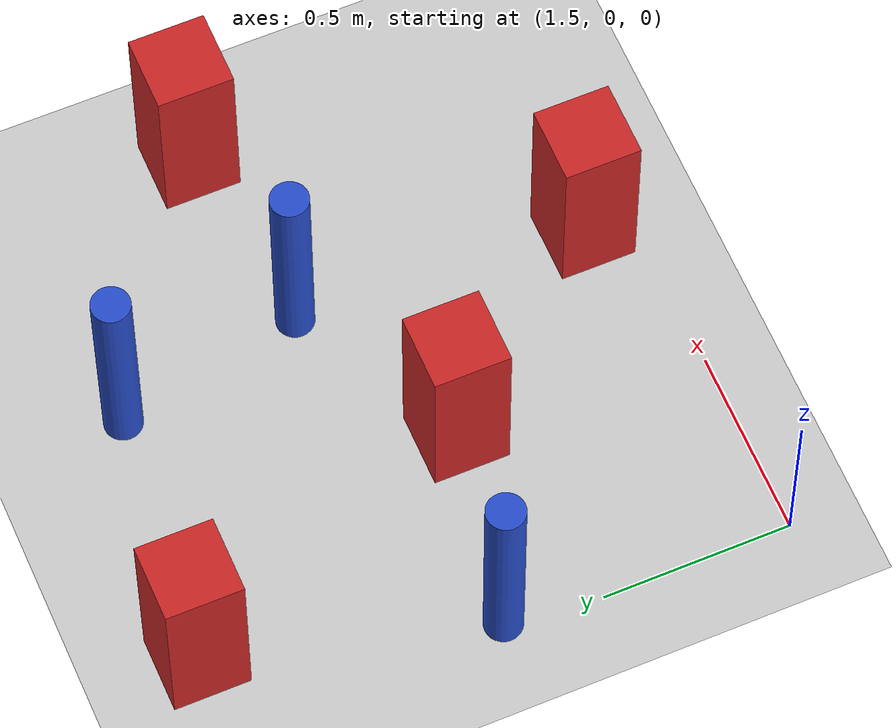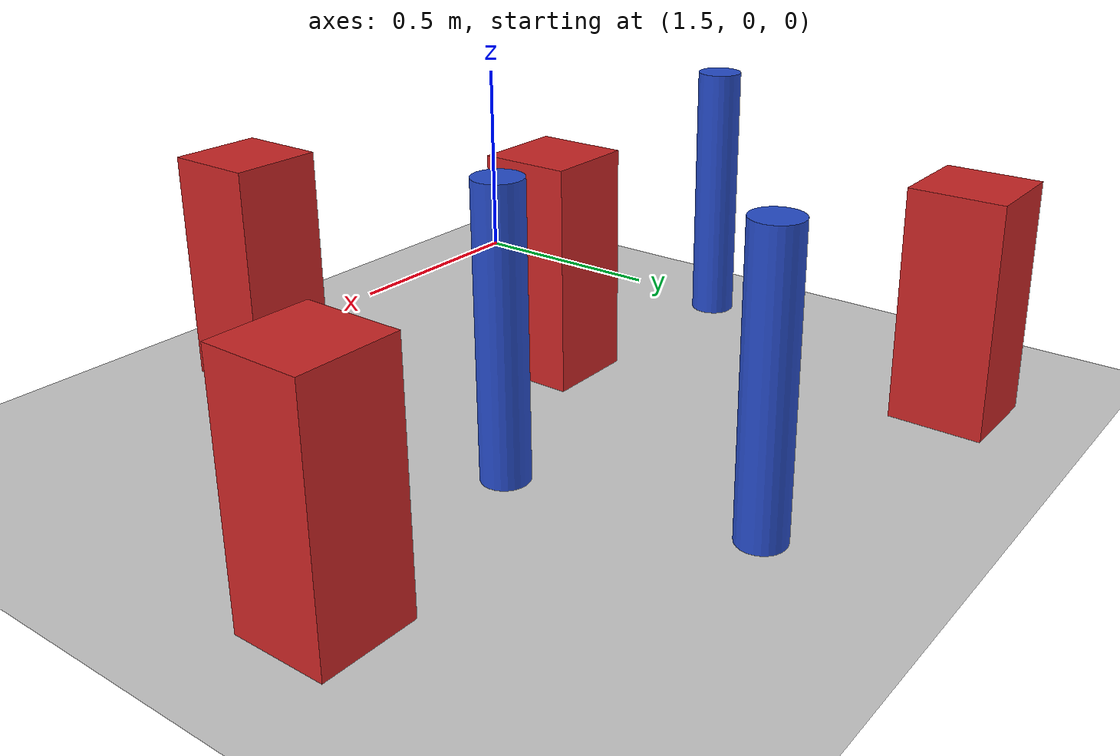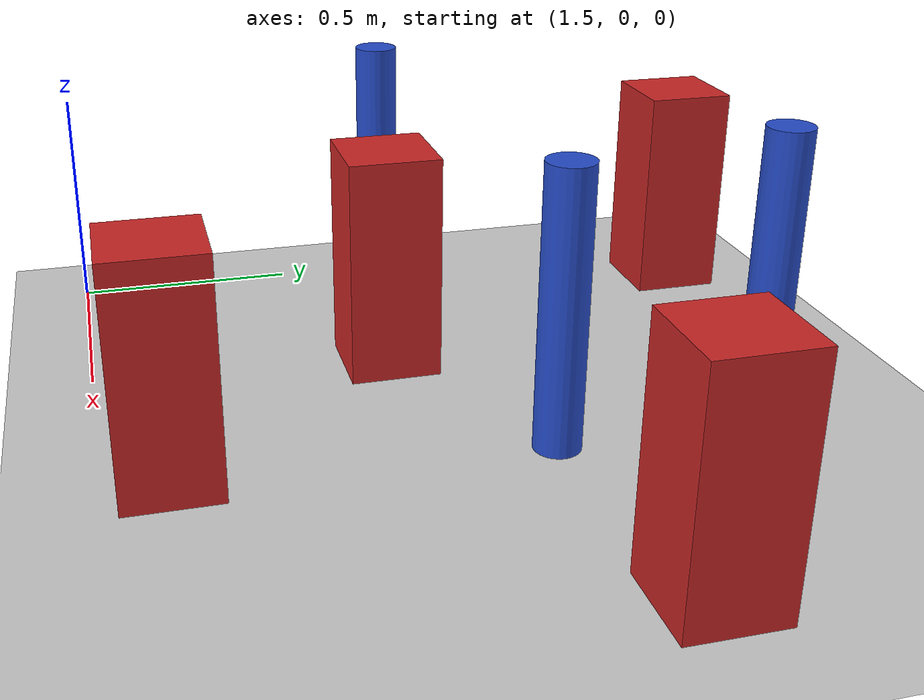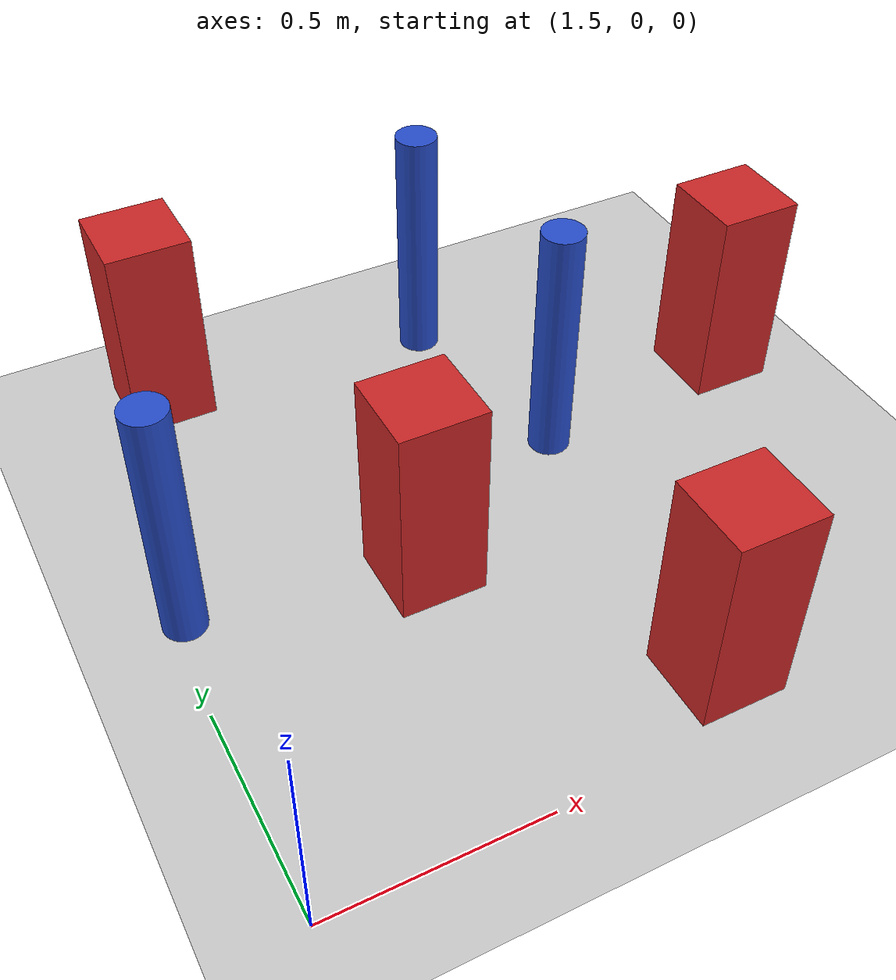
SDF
<sdf version="1.6">
 <world name="default">
  <model name="ground_plane">
   <static>1</static>
   <link name="link">
    <collision name="collision">
     <geometry><plane><normal>0 0 1</normal><size>100 100</size></plane></geometry>
     <surface><friction><ode><mu>100</mu><mu2>50</mu2></ode></friction></surface>
    </collision>
    <visual name="visual">
     <cast_shadows>0</cast_shadows>
     <geometry><plane><normal>0 0 1</normal><size>100 100</size></plane></geometry>
     <material>
      <ambient>1.0 1.0 1.0 1.0</ambient>
      <diffuse>0.8 0.8 0.8 1.0</diffuse>
      <specular>0.01 0.01 0.01 1.000000</specular>
     </material>
    </visual>
   </link>
  </model>
  <model name="square_post_obstacle38">
   <static>true</static>
   <pose>1.73250454028 1.47040162483 -6.11067671241e-07 -5.50515727128e-06 -8.79689657224e-07 2.37013304536e-05</pose>
   <link name="link">
    <pose>0 0 0.25 0 -0 0</pose>
    <inertial>
     <mass>100</mass>
     <inertia>
      <ixx>0.166667</ixx>
      <ixy>0</ixy>
      <ixz>0</ixz>
      <iyy>0.166667</iyy>
      <iyz>0</iyz>
      <izz>0.166667</izz>
     </inertia>
    </inertial>
    <collision name="collision"><geometry><box><size>.2 .2 .5</size></box></geometry></collision>
    <visual name="visual">
     <geometry><box><size>.2 .2 .5</size></box></geometry>
     <material>
      <script><name>Gazebo/Red</name><uri>file://media/materials/scripts/gazebo.material</uri></script>
     </material>
    </visual>
   </link>
  </model>
  <model name="square_post_obstacle47">
   <static>true</static>
   <pose>2.0501257577 0.653931071198 -6.11067671241e-07 -5.50515727128e-06 -8.79689657224e-07 2.37013304536e-05</pose>
   <link name="link">
    <pose>0 0 0.25 0 -0 0</pose>
    <inertial>
     <mass>100</mass>
     <inertia>
      <ixx>0.166667</ixx>
      <ixy>0</ixy>
      <ixz>0</ixz>
      <iyy>0.166667</iyy>
      <iyz>0</iyz>
      <izz>0.166667</izz>
     </inertia>
    </inertial>
    <collision name="collision"><geometry><box><size>.2 .2 .5</size></box></geometry></collision>
    <visual name="visual">
     <geometry><box><size>.2 .2 .5</size></box></geometry>
     <material>
      <script><name>Gazebo/Red</name><uri>file://media/materials/scripts/gazebo.material</uri></script>
     </material>
    </visual>
   </link>
  </model>
  <model name="square_post_obstacle123">
   <static>true</static>
   <pose>2.45362216157 0.13420818118 -6.11067671241e-07 -5.50515727128e-06 -8.79689657224e-07 2.37013304536e-05</pose>
   <link name="link">
    <pose>0 0 0.25 0 -0 0</pose>
    <inertial>
     <mass>100</mass>
     <inertia>
      <ixx>0.166667</ixx>
      <ixy>0</ixy>
      <ixz>0</ixz>
      <iyy>0.166667</iyy>
      <iyz>0</iyz>
      <izz>0.166667</izz>
     </inertia>
    </inertial>
    <collision name="collision"><geometry><box><size>.2 .2 .5</size></box></geometry></collision>
    <visual name="visual">
     <geometry><box><size>.2 .2 .5</size></box></geometry>
     <material>
      <script><name>Gazebo/Red</name><uri>file://media/materials/scripts/gazebo.material</uri></script>
     </material>
    </visual>
   </link>
  </model>
  <model name="pole_obstacle138">
   <static>true</static>
   <pose>1.5335910783 0.751207154841 -9.47619616065e-06 5.49618799737e-07 2.36310414065e-07 -1.55090534798e-07</pose>
   <link name="link">
    <pose>0 0 0.3 0 -0 0</pose>
    <inertial>
     <mass>1</mass>
     <inertia><ixx>0.145833</ixx><ixy>0</ixy><ixz>0</ixz><iyy>0.145833</iyy><iyz>0</iyz><izz>0.125</izz></inertia>
    </inertial>
    <collision name="collision">
     <geometry><cylinder><radius>0.05</radius><length>.6</length></cylinder></geometry>
    </collision>
    <visual name="visual">
     <geometry><cylinder><radius>0.05</radius><length>.6</length></cylinder></geometry>
     <material>
      <script><name>Gazebo/Blue</name><uri>file://media/materials/scripts/gazebo.material</uri></script>
     </material>
    </visual>
   </link>
  </model>
  <model name="square_post_obstacle196">
   <static>true</static>
   <pose>3.03268789231 0.970915363084 -6.11067671241e-07 -5.50515727128e-06 -8.79689657224e-07 2.37013304536e-05</pose>
   <link name="link">
    <pose>0 0 0.25 0 -0 0</pose>
    <inertial>
     <mass>100</mass>
     <inertia>
      <ixx>0.166667</ixx>
      <ixy>0</ixy>
      <ixz>0</ixz>
      <iyy>0.166667</iyy>
      <iyz>0</iyz>
      <izz>0.166667</izz>
     </inertia>
    </inertial>
    <collision name="collision"><geometry><box><size>.2 .2 .5</size></box></geometry></collision>
    <visual name="visual">
     <geometry><box><size>.2 .2 .5</size></box></geometry>
     <material>
      <script><name>Gazebo/Red</name><uri>file://media/materials/scripts/gazebo.material</uri></script>
     </material>
    </visual>
   </link>
  </model>
  <model name="pole_obstacle203">
   <static>true</static>
   <pose>2.50897401112 0.895459794286 -9.47619616065e-06 5.49618799738e-07 2.36310414075e-07 -1.55090534793e-07</pose>
   <link name="link">
    <pose>0 0 0.3 0 -0 0</pose>
    <inertial>
     <mass>1</mass>
     <inertia><ixx>0.145833</ixx><ixy>0</ixy><ixz>0</ixz><iyy>0.145833</iyy><iyz>0</iyz><izz>0.125</izz></inertia>
    </inertial>
    <collision name="collision">
     <geometry><cylinder><radius>0.05</radius><length>.6</length></cylinder></geometry>
    </collision>
    <visual name="visual">
     <geometry><cylinder><radius>0.05</radius><length>.6</length></cylinder></geometry>
     <material>
      <script><name>Gazebo/Blue</name><uri>file://media/materials/scripts/gazebo.material</uri></script>
     </material>
    </visual>
   </link>
  </model>
  <model name="pole_obstacle225">
   <static>true</static>
   <pose>2.40813801589 1.39641100876 -9.47619616065e-06 5.49618799737e-07 2.36310414072e-07 -1.55090534793e-07</pose>
   <link name="link">
    <pose>0 0 0.3 0 -0 0</pose>
    <inertial>
     <mass>1</mass>
     <inertia><ixx>0.145833</ixx><ixy>0</ixy><ixz>0</ixz><iyy>0.145833</iyy><iyz>0</iyz><izz>0.125</izz></inertia>
    </inertial>
    <collision name="collision">
     <geometry><cylinder><radius>0.05</radius><length>.6</length></cylinder></geometry>
    </collision>
    <visual name="visual">
     <geometry><cylinder><radius>0.05</radius><length>.6</length></cylinder></geometry>
     <material>
      <script><name>Gazebo/Blue</name><uri>file://media/materials/scripts/gazebo.material</uri></script>
     </material>
    </visual>
   </link>
  </model>
 </world>
</sdf>
